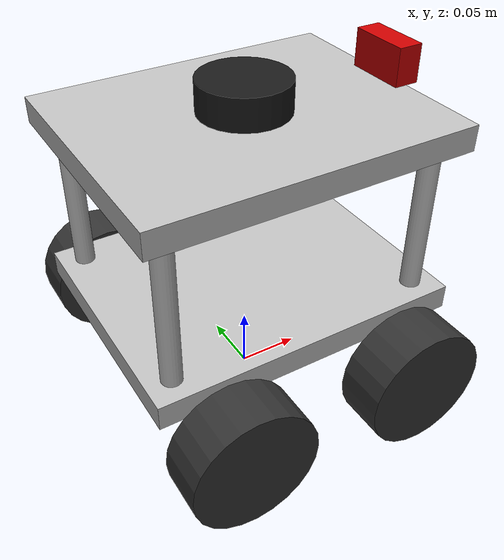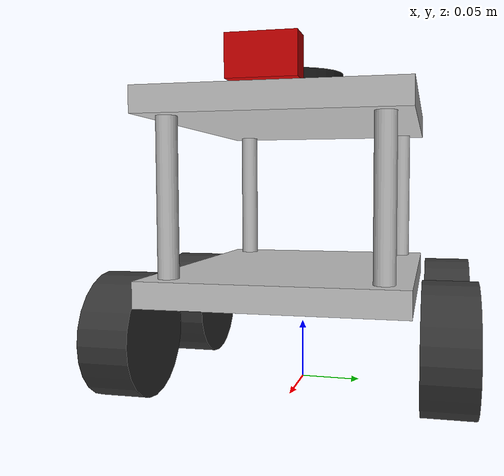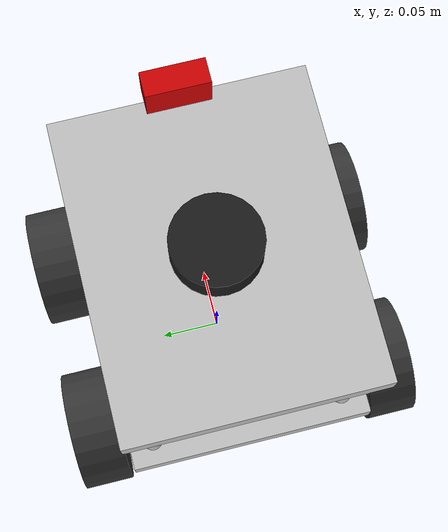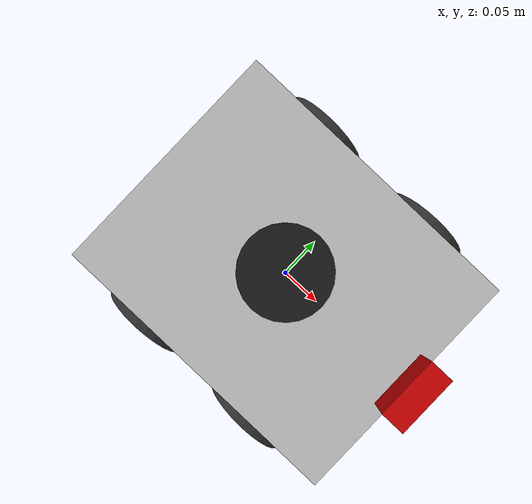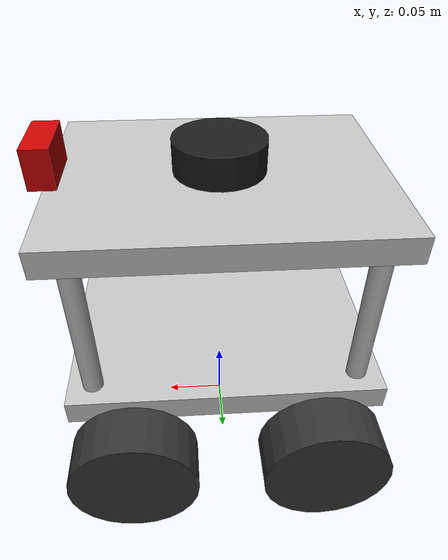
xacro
<?xml version="1.0"?>
<robot name="mecanum_assistant" xmlns:xacro="http://ros.org/wiki/xacro">

  <xacro:property name="base_len" value="0.25"/>
  <xacro:property name="base_wid" value="0.20"/>
  <xacro:property name="base_h" value="0.02"/> <xacro:property name="wheel_r" value="0.05"/>
  <xacro:property name="wheel_l" value="0.04"/>
  <xacro:property name="clearance" value="0.04"/> <xacro:property name="pillar_r" value="0.008"/>
  <xacro:property name="pillar_h" value="0.12"/> <material name="aluminum">
    <color rgba="0.75 0.75 0.75 1.0"/>
  </material>

  <link name="base_footprint"/>

  <joint name="base_joint" type="fixed">
    <parent link="base_footprint"/>
    <child link="base_link"/>
    <origin xyz="0 0 ${wheel_r}"/>
  </joint>

  <link name="base_link">
    <visual>
      <origin xyz="0 0 ${clearance}"/>
      <geometry><box size="${base_len} ${base_wid} ${base_h}"/></geometry>
      <material name="aluminum"/>
    </visual>
    <collision>
      <origin xyz="0 0 ${clearance}"/>
      <geometry><box size="${base_len} ${base_wid} ${base_h}"/></geometry>
    </collision>
    <inertial>
      <origin xyz="0 0 -0.02"/>
      <mass value="10.0"/>
      <inertia ixx="0.05" ixy="0" ixz="0" iyy="0.05" iyz="0" izz="0.1"/>
    </inertial>
  </link>
  <gazebo reference="base_link"><material>Gazebo/Grey</material></gazebo>

  <xacro:macro name="pillar" params="prefix x_pos y_pos">
    <link name="pillar_${prefix}">
      <visual>
        <geometry><cylinder radius="${pillar_r}" length="${pillar_h}"/></geometry>
        <material name="aluminum"/>
      </visual>
      <collision>
        <geometry><cylinder radius="${pillar_r}" length="${pillar_h}"/></geometry>
      </collision>
      <inertial>
        <mass value="0.1"/>
        <inertia ixx="0.0001" ixy="0" ixz="0" iyy="0.0001" iyz="0" izz="0.0001"/>
      </inertial>
    </link>
    <joint name="pillar_joint_${prefix}" type="fixed">
      <parent link="base_link"/>
      <child link="pillar_${prefix}"/>
      <origin xyz="${x_pos} ${y_pos} ${clearance + base_h/2 + pillar_h/2}"/>
    </joint>
  </xacro:macro>

  <xacro:pillar prefix="fl" x_pos="${base_len/2 - 0.02}" y_pos="${base_wid/2 - 0.02}"/>
  <xacro:pillar prefix="fr" x_pos="${base_len/2 - 0.02}" y_pos="-${base_wid/2 - 0.02}"/>
  <xacro:pillar prefix="rl" x_pos="-${base_len/2 - 0.02}" y_pos="${base_wid/2 - 0.02}"/>
  <xacro:pillar prefix="rr" x_pos="-${base_len/2 - 0.02}" y_pos="-${base_wid/2 - 0.02}"/>

  <link name="top_link">
    <visual>
      <geometry><box size="${base_len} ${base_wid} ${base_h}"/></geometry>
      <material name="aluminum"/>
    </visual>
    <collision>
      <geometry><box size="${base_len} ${base_wid} ${base_h}"/></geometry>
    </collision>
    <inertial>
      <mass value="2.0"/>
      <inertia ixx="0.01" ixy="0" ixz="0" iyy="0.01" iyz="0" izz="0.02"/>
    </inertial>
  </link>
  <joint name="top_joint" type="fixed">
    <parent link="base_link"/>
    <child link="top_link"/>
    <origin xyz="0 0 ${clearance + base_h/2 + pillar_h + base_h/2}"/>
  </joint>
  <gazebo reference="top_link"><material>Gazebo/Grey</material></gazebo>

  <xacro:macro name="mecanum_wheel" params="prefix x_ref y_ref">
    <link name="${prefix}_wheel">
      <visual>
        <origin xyz="0 0 0" rpy="${pi/2} 0 0"/>
        <geometry><cylinder radius="${wheel_r}" length="${wheel_l}"/></geometry>
        <material name="dark"><color rgba="0.2 0.2 0.2 1"/></material>
      </visual>
      <collision>
        <origin xyz="0 0 0" rpy="0 0 0"/>
        <geometry><sphere radius="${wheel_r}"/></geometry>
      </collision>
      <inertial>
        <mass value="0.5"/>
        <inertia ixx="0.001" ixy="0" ixz="0" iyy="0.001" iyz="0" izz="0.001"/>
      </inertial>
    </link>
    <joint name="${prefix}_wheel_joint" type="continuous">
      <parent link="base_link"/>
      <child link="${prefix}_wheel"/>
      <origin xyz="${x_ref*(base_len/2 - 0.05)} ${y_ref*(base_wid/2 + wheel_l/2 + 0.005)} 0" rpy="0 0 0"/>
      <axis xyz="0 1 0"/>
      <dynamics damping="0.1" friction="0.05"/>
    </joint>
    <gazebo reference="${prefix}_wheel">
      <material>Gazebo/DarkGrey</material>
      <mu1>0.0</mu1>
      <mu2>0.0</mu2>
    </gazebo>
  </xacro:macro>

  <xacro:mecanum_wheel prefix="front_left" x_ref="1" y_ref="1"/>
  <xacro:mecanum_wheel prefix="front_right" x_ref="1" y_ref="-1"/>
  <xacro:mecanum_wheel prefix="rear_left" x_ref="-1" y_ref="1"/>
  <xacro:mecanum_wheel prefix="rear_right" x_ref="-1" y_ref="-1"/>

  <link name="lidar_link">
    <visual>
      <geometry><cylinder radius="0.035" length="0.025"/></geometry>
      <material name="black"><color rgba="0.1 0.1 0.1 1"/></material>
    </visual>
    <collision>
      <geometry><cylinder radius="0.035" length="0.025"/></geometry>
    </collision>
    <inertial>
      <mass value="0.17"/> <inertia ixx="0.0001" ixy="0" ixz="0" iyy="0.0001" iyz="0" izz="0.0001"/>
    </inertial>
  </link>
  <joint name="lidar_joint" type="fixed">
    <parent link="top_link"/>
    <child link="lidar_link"/>
    <origin xyz="0 0 ${base_h/2 + 0.0125}"/>
  </joint>

  <gazebo reference="lidar_link">
    <material>Gazebo/Black</material>
    <sensor name="lidar_sensor" type="ray">
      <always_on>true</always_on>
      <visualize>true</visualize>
      <update_rate>10</update_rate>
      <ray>
        <scan>
          <horizontal>
            <samples>360</samples>
            <resolution>1</resolution>
            <min_angle>-3.14159</min_angle>
            <max_angle>3.14159</max_angle>
          </horizontal>
        </scan>
        <range>
          <min>0.15</min>
          <max>12.0</max>
          <resolution>0.01</resolution>
        </range>
      </ray>
      <plugin name="scan_controller" filename="libgazebo_ros_ray_sensor.so">
        <ros><remapping>~/out:=scan</remapping></ros>
        <output_type>sensor_msgs/LaserScan</output_type>
        <frame_name>lidar_link</frame_name>
      </plugin>
    </sensor>
  </gazebo>

  <link name="camera_link">
    <visual>
      <geometry><box size="0.02 0.05 0.03"/></geometry>
      <material name="red"><color rgba="0.8 0 0 1"/></material>
    </visual>
    <collision>
      <geometry><box size="0.02 0.05 0.03"/></geometry>
    </collision>
    <inertial>
      <mass value="0.1"/>
      <inertia ixx="0.0001" ixy="0" ixz="0" iyy="0.0001" iyz="0" izz="0.0001"/>
    </inertial>
  </link>
  <joint name="camera_joint" type="fixed">
    <parent link="top_link"/>
    <child link="camera_link"/>
    <origin xyz="${base_len/2} 0 ${base_h/2 + 0.015}"/>
  </joint>

  <gazebo reference="camera_link">
    <material>Gazebo/Red</material>
    <sensor type="camera" name="rgb_camera">
      <update_rate>30.0</update_rate>
      <camera>
        <horizontal_fov>1.047198</horizontal_fov> <image>
          <width>640</width>
          <height>480</height>
          <format>R8G8B8</format>
        </image>
      </camera>
      <plugin name="camera_controller" filename="libgazebo_ros_camera.so">
        <ros><remapping>~/image_raw:=camera/image_raw</remapping></ros>
        <frame_name>camera_link</frame_name>
      </plugin>
    </sensor>
  </gazebo>

  <ros2_control name="GazeboSystem" type="system">
    <hardware>
      <plugin>gazebo_ros2_control/GazeboSystem</plugin>
    </hardware>
    <joint name="front_left_wheel_joint">
      <command_interface name="velocity"/>
      <state_interface name="position"/>
      <state_interface name="velocity"/>
    </joint>
    <joint name="front_right_wheel_joint">
      <command_interface name="velocity"/>
      <state_interface name="position"/>
      <state_interface name="velocity"/>
    </joint>
    <joint name="rear_left_wheel_joint">
      <command_interface name="velocity"/>
      <state_interface name="position"/>
      <state_interface name="velocity"/>
    </joint>
    <joint name="rear_right_wheel_joint">
      <command_interface name="velocity"/>
      <state_interface name="position"/>
      <state_interface name="velocity"/>
    </joint>
  </ros2_control>

  <gazebo>
    <plugin filename="libgazebo_ros2_control.so" name="gazebo_ros2_control">
      <parameters>$(find mecanum_rl_description)/config/mecanum_ros2_control.yaml</parameters>
    </plugin>
  </gazebo>

  <gazebo>
    <plugin name="omni_steering" filename="libgazebo_ros_planar_move.so">
      <ros>
        <remapping>cmd_vel:=cmd_vel</remapping>
        <remapping>odom:=odom</remapping>
      </ros>
      <update_rate>50.0</update_rate>
      <publish_rate>50.0</publish_rate>
      <publish_odom>true</publish_odom>
      <publish_odom_tf>true</publish_odom_tf>
      <odometry_frame>odom</odometry_frame>
      <robot_base_frame>base_footprint</robot_base_frame>
      <covariance_x>0.0001</covariance_x>
      <covariance_y>0.0001</covariance_y>
      <covariance_yaw>0.01</covariance_yaw>
    </plugin>
  </gazebo>

</robot>
